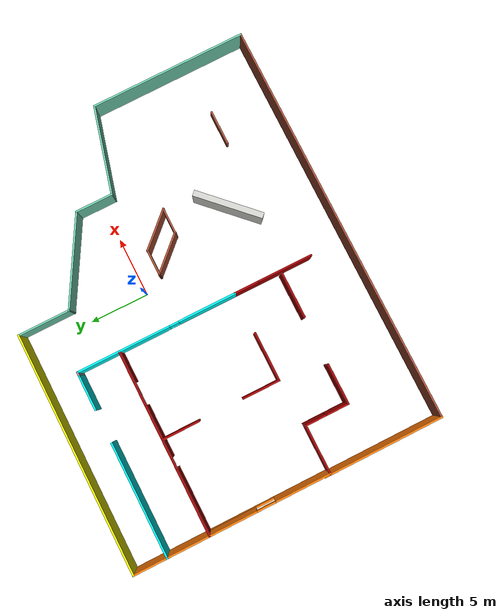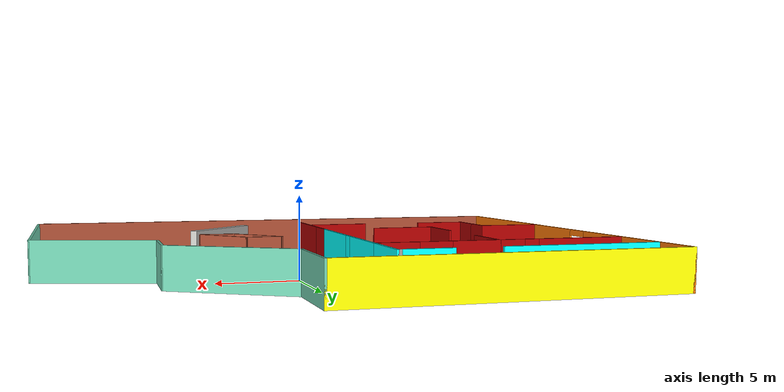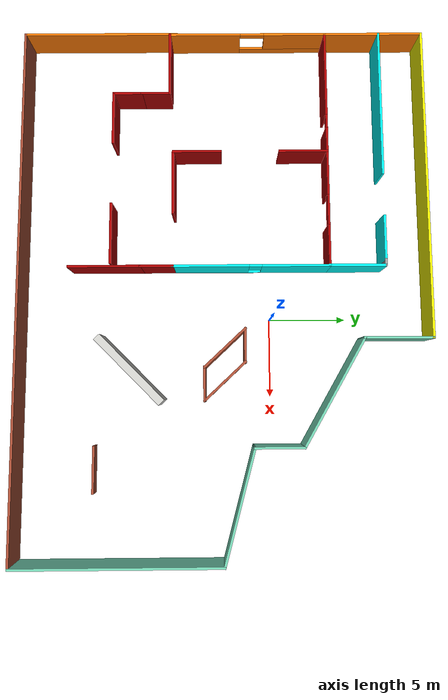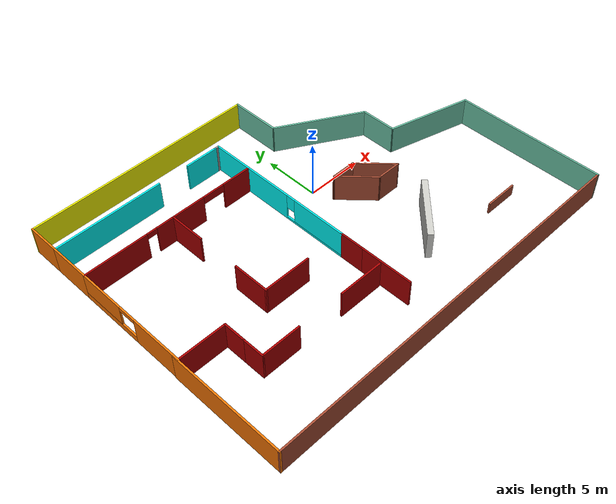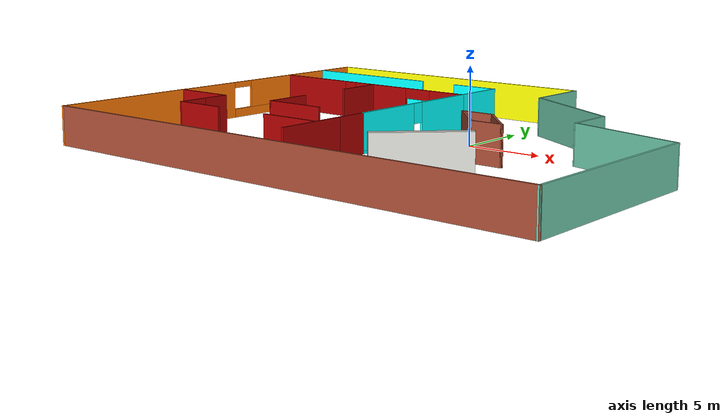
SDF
<?xml version='1.0'?>
<sdf version='1.6'>
  <model name='Building'>
    <pose frame=''>-1.90986 -2.97017 0 0 -0 0</pose>
    <link name='Wall_11'>
      <pose frame=''>-17.1231 1.60417 0 0 -0 1.5708</pose>
      <visual name='Wall_11_Visual_0'>
        <pose frame=''>-2.8644 0 1.25 0 -0 0</pose>
        <geometry>
          <box>
            <size>4.7712 0.15 2.5</size>
          </box>
        </geometry>
        <material>
          <script>
            <uri>file://media/materials/scripts/gazebo.material</uri>
            <name>Gazebo/Grey</name>
          </script>
          <ambient>0.996078 0.47451 0.0196078 1</ambient>
        </material>
        <meta>
          <layer>0</layer>
        </meta>
      </visual>
      <collision name='Wall_11_Collision_0'>
        <geometry>
          <box>
            <size>4.7712 0.15 2.5</size>
          </box>
        </geometry>
        <pose frame=''>-2.8644 0 1.25 0 -0 0</pose>
      </collision>
      <visual name='Wall_11_Visual_1'>
        <pose frame=''>2.3856 0 0.3 0 -0 0</pose>
        <geometry>
          <box>
            <size>5.7288 0.15 0.6</size>
          </box>
        </geometry>
        <material>
          <script>
            <uri>file://media/materials/scripts/gazebo.material</uri>
            <name>Gazebo/Grey</name>
          </script>
          <ambient>0.996078 0.47451 0.0196078 1</ambient>
        </material>
        <meta>
          <layer>0</layer>
        </meta>
      </visual>
      <collision name='Wall_11_Collision_1'>
        <geometry>
          <box>
            <size>5.7288 0.15 0.6</size>
          </box>
        </geometry>
        <pose frame=''>2.3856 0 0.3 0 -0 0</pose>
      </collision>
      <visual name='Wall_11_Visual_2'>
        <pose frame=''>3.1856 0 1.55 0 -0 0</pose>
        <geometry>
          <box>
            <size>4.1288 0.15 1.9</size>
          </box>
        </geometry>
        <material>
          <script>
            <uri>file://media/materials/scripts/gazebo.material</uri>
            <name>Gazebo/Grey</name>
          </script>
          <ambient>0.996078 0.47451 0.0196078 1</ambient>
        </material>
        <meta>
          <layer>0</layer>
        </meta>
      </visual>
      <collision name='Wall_11_Collision_2'>
        <geometry>
          <box>
            <size>4.1288 0.15 1.9</size>
          </box>
        </geometry>
        <pose frame=''>3.1856 0 1.55 0 -0 0</pose>
      </collision>
      <visual name='Wall_11_Visual_3'>
        <pose frame=''>0.321197 0 2.3 0 -0 0</pose>
        <geometry>
          <box>
            <size>1.6 0.15 0.4</size>
          </box>
        </geometry>
        <material>
          <script>
            <uri>file://media/materials/scripts/gazebo.material</uri>
            <name>Gazebo/Grey</name>
          </script>
          <ambient>0.996078 0.47451 0.0196078 1</ambient>
        </material>
        <meta>
          <layer>0</layer>
        </meta>
      </visual>
      <collision name='Wall_11_Collision_3'>
        <geometry>
          <box>
            <size>1.6 0.15 0.4</size>
          </box>
        </geometry>
        <pose frame=''>0.321197 0 2.3 0 -0 0</pose>
      </collision>
    </link>
    <link name='Wall_12'>
      <pose frame=''>-13.073 6.77928 0 0 -0 2.8e-05</pose>
      <visual name='Wall_12_Visual_0'>
        <pose frame=''>-1.29124 0 1.25 0 -0 0</pose>
        <geometry>
          <box>
            <size>5.66751 0.15 2.5</size>
          </box>
        </geometry>
        <material>
          <script>
            <uri>file://media/materials/scripts/gazebo.material</uri>
            <name>Gazebo/Grey</name>
          </script>
          <ambient>0.666667 0 0 1</ambient>
        </material>
        <meta>
          <layer>0</layer>
        </meta>
      </visual>
      <collision name='Wall_12_Collision_0'>
        <geometry>
          <box>
            <size>5.66751 0.15 2.5</size>
          </box>
        </geometry>
        <pose frame=''>-1.29124 0 1.25 0 -0 0</pose>
      </collision>
      <visual name='Wall_12_Visual_1'>
        <pose frame=''>3.28376 0 1.25 0 -0 0</pose>
        <geometry>
          <box>
            <size>1.68249 0.15 2.5</size>
          </box>
        </geometry>
        <material>
          <script>
            <uri>file://media/materials/scripts/gazebo.material</uri>
            <name>Gazebo/Grey</name>
          </script>
          <ambient>0.666667 0 0 1</ambient>
        </material>
        <meta>
          <layer>0</layer>
        </meta>
      </visual>
      <collision name='Wall_12_Collision_1'>
        <geometry>
          <box>
            <size>1.68249 0.15 2.5</size>
          </box>
        </geometry>
        <pose frame=''>3.28376 0 1.25 0 -0 0</pose>
      </collision>
      <visual name='Wall_12_Visual_2'>
        <pose frame=''>1.99251 0 2.25 0 -0 0</pose>
        <geometry>
          <box>
            <size>0.9 0.15 0.5</size>
          </box>
        </geometry>
        <material>
          <script>
            <uri>file://media/materials/scripts/gazebo.material</uri>
            <name>Gazebo/Grey</name>
          </script>
          <ambient>0.666667 0 0 1</ambient>
        </material>
        <meta>
          <layer>0</layer>
        </meta>
      </visual>
      <collision name='Wall_12_Collision_2'>
        <geometry>
          <box>
            <size>0.9 0.15 0.5</size>
          </box>
        </geometry>
        <pose frame=''>1.99251 0 2.25 0 -0 0</pose>
      </collision>
    </link>
    <link name='Wall_13'>
      <collision name='Wall_13_Collision'>
        <geometry>
          <box>
            <size>3.25 0.15 2.5</size>
          </box>
        </geometry>
        <pose frame=''>0 0 1.25 0 -0 0</pose>
      </collision>
      <visual name='Wall_13_Visual'>
        <pose frame=''>0 0 1.25 0 -0 0</pose>
        <geometry>
          <box>
            <size>3.25 0.15 2.5</size>
          </box>
        </geometry>
        <material>
          <script>
            <uri>file://media/materials/scripts/gazebo.material</uri>
            <name>Gazebo/Grey</name>
          </script>
          <ambient>0.666667 0 0 1</ambient>
        </material>
        <meta>
          <layer>0</layer>
        </meta>
      </visual>
      <pose frame=''>-9.02283 5.2294 0 0 0 -1.5708</pose>
    </link>
    <link name='Wall_145'>
      <collision name='Wall_145_Collision'>
        <geometry>
          <box>
            <size>3.25 0.15 2.5</size>
          </box>
        </geometry>
        <pose frame=''>0 0 1.25 0 -0 0</pose>
      </collision>
      <visual name='Wall_145_Visual'>
        <pose frame=''>0 0 1.25 0 -0 0</pose>
        <geometry>
          <box>
            <size>3.25 0.15 2.5</size>
          </box>
        </geometry>
        <material>
          <script>
            <uri>file://media/materials/scripts/gazebo.material</uri>
            <name>Gazebo/Grey</name>
          </script>
          <ambient>0.666667 0 0 1</ambient>
        </material>
        <meta>
          <layer>0</layer>
        </meta>
      </visual>
      <pose frame=''>-9.02283 -1.7706 0 0 -0 1.5708</pose>
    </link>
    <link name='Wall_15'>
      <pose frame=''>-5.22283 6.7794 0 0 -0 0</pose>
      <visual name='Wall_15_Visual_0'>
        <pose frame=''>-2.37184 0 1.25 0 -0 0</pose>
        <geometry>
          <box>
            <size>3.00631 0.15 2.5</size>
          </box>
        </geometry>
        <material>
          <script>
            <uri>file://media/materials/scripts/gazebo.material</uri>
            <name>Gazebo/Grey</name>
          </script>
          <ambient>0.666667 0 0 1</ambient>
        </material>
        <meta>
          <layer>0</layer>
        </meta>
      </visual>
      <collision name='Wall_15_Collision_0'>
        <geometry>
          <box>
            <size>3.00631 0.15 2.5</size>
          </box>
        </geometry>
        <pose frame=''>-2.37184 0 1.25 0 -0 0</pose>
      </collision>
      <visual name='Wall_15_Visual_1'>
        <pose frame=''>2.50316 0 1.25 0 -0 0</pose>
        <geometry>
          <box>
            <size>2.74369 0.15 2.5</size>
          </box>
        </geometry>
        <material>
          <script>
            <uri>file://media/materials/scripts/gazebo.material</uri>
            <name>Gazebo/Grey</name>
          </script>
          <ambient>0.666667 0 0 1</ambient>
        </material>
        <meta>
          <layer>0</layer>
        </meta>
      </visual>
      <collision name='Wall_15_Collision_1'>
        <geometry>
          <box>
            <size>2.74369 0.15 2.5</size>
          </box>
        </geometry>
        <pose frame=''>2.50316 0 1.25 0 -0 0</pose>
      </collision>
      <visual name='Wall_15_Visual_2'>
        <pose frame=''>0.131312 0 2.15 0 -0 0</pose>
        <geometry>
          <box>
            <size>2 0.15 0.7</size>
          </box>
        </geometry>
        <material>
          <script>
            <uri>file://media/materials/scripts/gazebo.material</uri>
            <name>Gazebo/Grey</name>
          </script>
          <ambient>0.666667 0 0 1</ambient>
        </material>
        <meta>
          <layer>0</layer>
        </meta>
      </visual>
      <collision name='Wall_15_Collision_2'>
        <geometry>
          <box>
            <size>2 0.15 0.7</size>
          </box>
        </geometry>
        <pose frame=''>0.131312 0 2.15 0 -0 0</pose>
      </collision>
    </link>
    <link name='Wall_16'>
      <pose frame=''>-1.42283 1.7294 0 0 0 -1.5708</pose>
      <visual name='Wall_16_Visual_0'>
        <pose frame=''>-2.89998 0 1.25 0 -0 0</pose>
        <geometry>
          <box>
            <size>4.45005 0.15 2.5</size>
          </box>
        </geometry>
        <material>
          <script>
            <uri>file://media/materials/scripts/gazebo.material</uri>
            <name>Gazebo/Grey</name>
          </script>
          <ambient>0 1 1 1</ambient>
        </material>
        <meta>
          <layer>0</layer>
        </meta>
      </visual>
      <collision name='Wall_16_Collision_0'>
        <geometry>
          <box>
            <size>4.45005 0.15 2.5</size>
          </box>
        </geometry>
        <pose frame=''>-2.89998 0 1.25 0 -0 0</pose>
      </collision>
      <visual name='Wall_16_Visual_1'>
        <pose frame=''>2.22502 0 0.1 0 -0 0</pose>
        <geometry>
          <box>
            <size>5.79995 0.15 0.2</size>
          </box>
        </geometry>
        <material>
          <script>
            <uri>file://media/materials/scripts/gazebo.material</uri>
            <name>Gazebo/Grey</name>
          </script>
          <ambient>0 1 1 1</ambient>
        </material>
        <meta>
          <layer>0</layer>
        </meta>
      </visual>
      <collision name='Wall_16_Collision_1'>
        <geometry>
          <box>
            <size>5.79995 0.15 0.2</size>
          </box>
        </geometry>
        <pose frame=''>2.22502 0 0.1 0 -0 0</pose>
      </collision>
      <visual name='Wall_16_Visual_2'>
        <pose frame=''>2.62502 0 1.35 0 -0 0</pose>
        <geometry>
          <box>
            <size>4.99995 0.15 2.3</size>
          </box>
        </geometry>
        <material>
          <script>
            <uri>file://media/materials/scripts/gazebo.material</uri>
            <name>Gazebo/Grey</name>
          </script>
          <ambient>0 1 1 1</ambient>
        </material>
        <meta>
          <layer>0</layer>
        </meta>
      </visual>
      <collision name='Wall_16_Collision_2'>
        <geometry>
          <box>
            <size>4.99995 0.15 2.3</size>
          </box>
        </geometry>
        <pose frame=''>2.62502 0 1.35 0 -0 0</pose>
      </collision>
      <visual name='Wall_16_Visual_3'>
        <pose frame=''>-0.274954 0 1.85 0 -0 0</pose>
        <geometry>
          <box>
            <size>0.8 0.15 1.3</size>
          </box>
        </geometry>
        <material>
          <script>
            <uri>file://media/materials/scripts/gazebo.material</uri>
            <name>Gazebo/Grey</name>
          </script>
          <ambient>0 1 1 1</ambient>
        </material>
        <meta>
          <layer>0</layer>
        </meta>
      </visual>
      <collision name='Wall_16_Collision_3'>
        <geometry>
          <box>
            <size>0.8 0.15 1.3</size>
          </box>
        </geometry>
        <pose frame=''>-0.274954 0 1.85 0 -0 0</pose>
      </collision>
    </link>
    <link name='Wall_21'>
      <collision name='Wall_21_Collision'>
        <geometry>
          <box>
            <size>4.25 0.15 2.5</size>
          </box>
        </geometry>
        <pose frame=''>0 0 1.25 0 -0 0</pose>
      </collision>
      <visual name='Wall_21_Visual'>
        <pose frame=''>0 0 1.25 0 -0 0</pose>
        <geometry>
          <box>
            <size>4.25 0.15 2.5</size>
          </box>
        </geometry>
        <material>
          <script>
            <uri>file://media/materials/scripts/gazebo.material</uri>
            <name>Gazebo/Grey</name>
          </script>
          <ambient>0.666667 0 0 1</ambient>
        </material>
        <meta>
          <layer>0</layer>
        </meta>
      </visual>
      <pose frame=''>-15.073 -3.57071 0 0 -0 5.5e-05</pose>
    </link>
    <link name='Wall_22'>
      <collision name='Wall_22_Collision'>
        <geometry>
          <box>
            <size>2 0.15 2.5</size>
          </box>
        </geometry>
        <pose frame=''>0 0 1.25 0 -0 0</pose>
      </collision>
      <visual name='Wall_22_Visual'>
        <pose frame=''>0 0 1.25 0 -0 0</pose>
        <geometry>
          <box>
            <size>2 0.15 2.5</size>
          </box>
        </geometry>
        <material>
          <script>
            <uri>file://media/materials/scripts/gazebo.material</uri>
            <name>Gazebo/Grey</name>
          </script>
          <ambient>0.666667 0 0 1</ambient>
        </material>
        <meta>
          <layer>0</layer>
        </meta>
      </visual>
      <pose frame=''>-13.0228 -4.4956 0 0 0 -1.5708</pose>
    </link>
    <link name='Wall_24'>
      <collision name='Wall_24_Collision'>
        <geometry>
          <box>
            <size>2.25 0.15 2.5</size>
          </box>
        </geometry>
        <pose frame=''>0 0 1.25 0 -0 0</pose>
      </collision>
      <visual name='Wall_24_Visual'>
        <pose frame=''>0 0 1.25 0 -0 0</pose>
        <geometry>
          <box>
            <size>2.25 0.15 2.5</size>
          </box>
        </geometry>
        <material>
          <script>
            <uri>file://media/materials/scripts/gazebo.material</uri>
            <name>Gazebo/Grey</name>
          </script>
          <ambient>0.666667 0 0 1</ambient>
        </material>
        <meta>
          <layer>0</layer>
        </meta>
      </visual>
      <pose frame=''>-1.42283 -4.3706 0 0 -0 1.5708</pose>
    </link>
    <link name='Wall_26'>
      <collision name='Wall_26_Collision'>
        <geometry>
          <box>
            <size>3.75 0.15 2.5</size>
          </box>
        </geometry>
        <pose frame=''>0 0 1.25 0 -0 0</pose>
      </collision>
      <visual name='Wall_26_Visual'>
        <pose frame=''>0 0 1.25 0 -0 0</pose>
        <geometry>
          <box>
            <size>3.75 0.15 2.5</size>
          </box>
        </geometry>
        <material>
          <script>
            <uri>file://media/materials/scripts/gazebo.material</uri>
            <name>Gazebo/Grey</name>
          </script>
          <ambient>0.996078 0.47451 0.0196078 1</ambient>
        </material>
        <meta>
          <layer>0</layer>
        </meta>
      </visual>
      <pose frame=''>-17.1231 8.57917 0 0 -0 1.5708</pose>
    </link>
    <link name='Wall_28'>
      <collision name='Wall_28_Collision'>
        <geometry>
          <box>
            <size>0.5 0.15 2.5</size>
          </box>
        </geometry>
        <pose frame=''>0 0 1.25 0 -0 0</pose>
      </collision>
      <visual name='Wall_28_Visual'>
        <pose frame=''>0 0 1.25 0 -0 0</pose>
        <geometry>
          <box>
            <size>0.5 0.15 2.5</size>
          </box>
        </geometry>
        <material>
          <script>
            <uri>file://media/materials/scripts/gazebo.material</uri>
            <name>Gazebo/Grey</name>
          </script>
          <ambient>1 1 1 1</ambient>
        </material>
        <meta>
          <layer>0</layer>
        </meta>
      </visual>
      <pose frame=''>-1.59783 10.3794 0 0 -0 0</pose>
    </link>
    <link name='Wall_29'>
      <collision name='Wall_29_Collision'>
        <geometry>
          <box>
            <size>3.75 0.15 2.5</size>
          </box>
        </geometry>
        <pose frame=''>0 0 1.25 0 -0 0</pose>
      </collision>
      <visual name='Wall_29_Visual'>
        <pose frame=''>0 0 1.25 0 -0 0</pose>
        <geometry>
          <box>
            <size>3.75 0.15 2.5</size>
          </box>
        </geometry>
        <material>
          <script>
            <uri>file://media/materials/scripts/gazebo.material</uri>
            <name>Gazebo/Grey</name>
          </script>
          <ambient>0 1 1 1</ambient>
        </material>
        <meta>
          <layer>0</layer>
        </meta>
      </visual>
      <pose frame=''>-1.42283 8.5794 0 0 0 -1.5708</pose>
    </link>
    <link name='Wall_34'>
      <collision name='Wall_34_Collision'>
        <geometry>
          <box>
            <size>4.25 0.15 2.5</size>
          </box>
        </geometry>
        <pose frame=''>0 0 1.25 0 -0 0</pose>
      </collision>
      <visual name='Wall_34_Visual'>
        <pose frame=''>0 0 1.25 0 -0 0</pose>
        <geometry>
          <box>
            <size>4.25 0.15 2.5</size>
          </box>
        </geometry>
        <material>
          <script>
            <uri>file://media/materials/scripts/gazebo.material</uri>
            <name>Gazebo/Grey</name>
          </script>
          <ambient>0.666667 0 0 1</ambient>
        </material>
        <meta>
          <layer>0</layer>
        </meta>
      </visual>
      <pose frame=''>-6.97283 -3.3206 0 0 -0 0</pose>
    </link>
    <link name='Wall_37'>
      <collision name='Wall_37_Collision'>
        <geometry>
          <box>
            <size>2 0.15 2.5</size>
          </box>
        </geometry>
        <pose frame=''>0 0 1.25 0 -0 0</pose>
      </collision>
      <visual name='Wall_37_Visual'>
        <pose frame=''>0 0 1.25 0 -0 0</pose>
        <geometry>
          <box>
            <size>2 0.15 2.5</size>
          </box>
        </geometry>
        <material>
          <script>
            <uri>file://media/materials/scripts/gazebo.material</uri>
            <name>Gazebo/Grey</name>
          </script>
          <ambient>0.666667 0 0 1</ambient>
        </material>
        <meta>
          <layer>0</layer>
        </meta>
      </visual>
      <pose frame=''>-13.0228 -6.3456 0 0 0 -1.5708</pose>
    </link>
    <link name='Wall_38'>
      <collision name='Wall_38_Collision'>
        <geometry>
          <box>
            <size>3.5 0.15 2.5</size>
          </box>
        </geometry>
        <pose frame=''>0 0 1.25 0 -0 0</pose>
      </collision>
      <visual name='Wall_38_Visual'>
        <pose frame=''>0 0 1.25 0 -0 0</pose>
        <geometry>
          <box>
            <size>3.5 0.15 2.5</size>
          </box>
        </geometry>
        <material>
          <script>
            <uri>file://media/materials/scripts/gazebo.material</uri>
            <name>Gazebo/Grey</name>
          </script>
          <ambient>0.666667 0 0 1</ambient>
        </material>
        <meta>
          <layer>0</layer>
        </meta>
      </visual>
      <pose frame=''>-11.3478 -7.2706 0 0 -0 0</pose>
    </link>
    <link name='Wall_40'>
      <collision name='Wall_40_Collision'>
        <geometry>
          <box>
            <size>4.75 0.15 2.5</size>
          </box>
        </geometry>
        <pose frame=''>0 0 1.25 0 -0 0</pose>
      </collision>
      <visual name='Wall_40_Visual'>
        <pose frame=''>0 0 1.25 0 -0 0</pose>
        <geometry>
          <box>
            <size>4.75 0.15 2.5</size>
          </box>
        </geometry>
        <material>
          <script>
            <uri>file://media/materials/scripts/gazebo.material</uri>
            <name>Gazebo/Grey</name>
          </script>
          <ambient>0.666667 0 0 1</ambient>
        </material>
        <meta>
          <layer>0</layer>
        </meta>
      </visual>
      <pose frame=''>-1.42283 -7.7206 0 0 0 -1.5708</pose>
    </link>
    <link name='Wall_42'>
      <collision name='Wall_42_Collision'>
        <geometry>
          <box>
            <size>4 0.15 2.5</size>
          </box>
        </geometry>
        <pose frame=''>0 0 1.25 0 -0 0</pose>
      </collision>
      <visual name='Wall_42_Visual'>
        <pose frame=''>0 0 1.25 0 -0 0</pose>
        <geometry>
          <box>
            <size>4 0.15 2.5</size>
          </box>
        </geometry>
        <material>
          <script>
            <uri>file://media/materials/scripts/gazebo.material</uri>
            <name>Gazebo/Grey</name>
          </script>
          <ambient>0.666667 0 0 1</ambient>
        </material>
        <meta>
          <layer>0</layer>
        </meta>
      </visual>
      <pose frame=''>-3.59193 -7.33035 0 0 -0 0</pose>
    </link>
    <link name='Wall_44'>
      <collision name='Wall_44_Collision'>
        <geometry>
          <box>
            <size>10.25 0.15 2.5</size>
          </box>
        </geometry>
        <pose frame=''>0 0 1.25 0 -0 0</pose>
      </collision>
      <visual name='Wall_44_Visual'>
        <pose frame=''>0 0 1.25 0 -0 0</pose>
        <geometry>
          <box>
            <size>10.25 0.15 2.5</size>
          </box>
        </geometry>
        <material>
          <script>
            <uri>file://media/materials/scripts/gazebo.material</uri>
            <name>Gazebo/Grey</name>
          </script>
          <ambient>0.996078 0.47451 0.0196078 1</ambient>
        </material>
        <meta>
          <layer>0</layer>
        </meta>
      </visual>
      <pose frame=''>-17.1751 -8.17883 0 0 0 -1.5708</pose>
    </link>
    <link name='Wall_45'>
      <collision name='Wall_45_Collision'>
        <geometry>
          <box>
            <size>34.5 0.15 2.5</size>
          </box>
        </geometry>
        <pose frame=''>0 0 1.25 0 -0 0</pose>
      </collision>
      <visual name='Wall_45_Visual'>
        <pose frame=''>0 0 1.25 0 -0 0</pose>
        <geometry>
          <box>
            <size>34.5 0.15 2.5</size>
          </box>
        </geometry>
        <material>
          <script>
            <uri>file://media/materials/scripts/gazebo.material</uri>
            <name>Gazebo/Bricks</name>
          </script>
          <ambient>1 0.764706 0.305882 1</ambient>
        </material>
        <meta>
          <layer>0</layer>
        </meta>
      </visual>
      <pose frame=''>-0.000142 -13.2288 0 0 -0 0</pose>
    </link>
    <link name='Wall_51'>
      <collision name='Wall_51_Collision'>
        <geometry>
          <box>
            <size>9.75 0.15 2.5</size>
          </box>
        </geometry>
        <pose frame=''>0 0 1.25 0 -0 0</pose>
      </collision>
      <visual name='Wall_51_Visual'>
        <pose frame=''>0 0 1.25 0 -0 0</pose>
        <geometry>
          <box>
            <size>9.75 0.15 2.5</size>
          </box>
        </geometry>
        <material>
          <script>
            <uri>file://media/materials/scripts/gazebo.material</uri>
            <name>Gazebo/Grey</name>
          </script>
          <ambient>0 1 1 1</ambient>
        </material>
        <meta>
          <layer>0</layer>
        </meta>
      </visual>
      <pose frame=''>-12.323 10.3793 0 0 -0 2.3e-05</pose>
    </link>
    <link name='Wall_53'>
      <collision name='Wall_53_Collision'>
        <geometry>
          <box>
            <size>3 0.15 2.5</size>
          </box>
        </geometry>
        <pose frame=''>0 0 1.25 0 -0 0</pose>
      </collision>
      <visual name='Wall_53_Visual'>
        <pose frame=''>0 0 1.25 0 -0 0</pose>
        <geometry>
          <box>
            <size>3 0.15 2.5</size>
          </box>
        </geometry>
        <material>
          <script>
            <uri>file://media/materials/scripts/gazebo.material</uri>
            <name>Gazebo/Grey</name>
          </script>
          <ambient>0 1 1 1</ambient>
        </material>
        <meta>
          <layer>0</layer>
        </meta>
      </visual>
      <pose frame=''>-3.19783 10.3794 0 0 -0 3.14159</pose>
    </link>
    <link name='Wall_56'>
      <collision name='Wall_56_Collision'>
        <geometry>
          <box>
            <size>3 0.15 2.5</size>
          </box>
        </geometry>
        <pose frame=''>0 0 1.25 0 -0 0</pose>
      </collision>
      <visual name='Wall_56_Visual'>
        <pose frame=''>0 0 1.25 0 -0 0</pose>
        <geometry>
          <box>
            <size>3 0.15 2.5</size>
          </box>
        </geometry>
        <material>
          <script>
            <uri>file://media/materials/scripts/gazebo.material</uri>
            <name>Gazebo/Grey</name>
          </script>
          <ambient>0.996078 0.47451 0.0196078 1</ambient>
        </material>
        <meta>
          <layer>0</layer>
        </meta>
      </visual>
      <pose frame=''>-17.1231 11.8042 0 0 -0 1.5708</pose>
    </link>
    <link name='Wall_57'>
      <collision name='Wall_57_Collision'>
        <geometry>
          <box>
            <size>20.5 0.15 2.5</size>
          </box>
        </geometry>
        <pose frame=''>0 0 1.25 0 -0 0</pose>
      </collision>
      <visual name='Wall_57_Visual'>
        <pose frame=''>0 0 1.25 0 -0 0</pose>
        <geometry>
          <box>
            <size>20.5 0.15 2.5</size>
          </box>
        </geometry>
        <material>
          <script>
            <uri>file://media/materials/scripts/gazebo.material</uri>
            <name>Gazebo/Grey</name>
          </script>
          <ambient>1 1 0 1</ambient>
        </material>
        <meta>
          <layer>0</layer>
        </meta>
      </visual>
      <pose frame=''>-6.94814 13.2292 0 0 -0 0</pose>
    </link>
    <link name='Wall_58'>
      <collision name='Wall_58_Collision'>
        <geometry>
          <box>
            <size>4.5 0.15 2.5</size>
          </box>
        </geometry>
        <pose frame=''>0 0 1.25 0 -0 0</pose>
      </collision>
      <visual name='Wall_58_Visual'>
        <pose frame=''>0 0 1.25 0 -0 0</pose>
        <geometry>
          <box>
            <size>4.5 0.15 2.5</size>
          </box>
        </geometry>
        <material>
          <script>
            <uri>file://media/materials/scripts/gazebo.material</uri>
            <name>Gazebo/Grey</name>
          </script>
          <ambient>0.435294 0.796078 0.67451 1</ambient>
        </material>
        <meta>
          <layer>0</layer>
        </meta>
      </visual>
      <pose frame=''>3.22686 11.0542 0 0 0 -1.5708</pose>
    </link>
    <link name='Wall_59'>
      <collision name='Wall_59_Collision'>
        <geometry>
          <box>
            <size>8 0.15 2.5</size>
          </box>
        </geometry>
        <pose frame=''>0 0 1.25 0 -0 0</pose>
      </collision>
      <visual name='Wall_59_Visual'>
        <pose frame=''>0 0 1.25 0 -0 0</pose>
        <geometry>
          <box>
            <size>8 0.15 2.5</size>
          </box>
        </geometry>
        <material>
          <script>
            <uri>file://media/materials/scripts/gazebo.material</uri>
            <name>Gazebo/Grey</name>
          </script>
          <ambient>0.435294 0.796078 0.67451 1</ambient>
        </material>
        <meta>
          <layer>0</layer>
        </meta>
      </visual>
      <pose frame=''>6.62636 6.91667 0 0 0 -0.523554</pose>
    </link>
    <link name='Wall_60'>
      <collision name='Wall_60_Collision'>
        <geometry>
          <box>
            <size>3.25 0.15 2.5</size>
          </box>
        </geometry>
        <pose frame=''>0 0 1.25 0 -0 0</pose>
      </collision>
      <visual name='Wall_60_Visual'>
        <pose frame=''>0 0 1.25 0 -0 0</pose>
        <geometry>
          <box>
            <size>3.25 0.15 2.5</size>
          </box>
        </geometry>
        <material>
          <script>
            <uri>file://media/materials/scripts/gazebo.material</uri>
            <name>Gazebo/Grey</name>
          </script>
          <ambient>0.435294 0.796078 0.67451 1</ambient>
        </material>
        <meta>
          <layer>0</layer>
        </meta>
      </visual>
      <pose frame=''>10.0259 3.40417 0 0 0 -1.5708</pose>
    </link>
    <link name='Wall_61'>
      <collision name='Wall_61_Collision'>
        <geometry>
          <box>
            <size>7.5 0.15 2.5</size>
          </box>
        </geometry>
        <pose frame=''>0 0 1.25 0 -0 0</pose>
      </collision>
      <visual name='Wall_61_Visual'>
        <pose frame=''>0 0 1.25 0 -0 0</pose>
        <geometry>
          <box>
            <size>7.5 0.15 2.5</size>
          </box>
        </geometry>
        <material>
          <script>
            <uri>file://media/materials/scripts/gazebo.material</uri>
            <name>Gazebo/Grey</name>
          </script>
          <ambient>0.435294 0.796078 0.67451 1</ambient>
        </material>
        <meta>
          <layer>0</layer>
        </meta>
      </visual>
      <pose frame=''>13.5754 0.903172 0 0 0 -0.261777</pose>
    </link>
    <link name='Wall_63'>
      <collision name='Wall_63_Collision'>
        <geometry>
          <box>
            <size>5.84982 0.5 2.5</size>
          </box>
        </geometry>
        <pose frame=''>0 0 1.25 0 -0 0</pose>
      </collision>
      <visual name='Wall_63_Visual'>
        <pose frame=''>0 0 1.25 0 -0 0</pose>
        <geometry>
          <box>
            <size>5.84982 0.5 2.5</size>
          </box>
        </geometry>
        <material>
          <script>
            <uri>file://media/materials/scripts/gazebo.material</uri>
            <name>Gazebo/CeilingTiled</name>
          </script>
          <ambient>0.921569 0.807843 0.615686 1</ambient>
        </material>
        <meta>
          <layer>0</layer>
        </meta>
      </visual>
      <pose frame=''>5.15136 -6.04333 0 0 -0 0.785398</pose>
    </link>
    <link name='Wall_65'>
      <collision name='Wall_65_Collision'>
        <geometry>
          <box>
            <size>13.3312 0.15 2.5</size>
          </box>
        </geometry>
        <pose frame=''>0 0 1.25 0 -0 0</pose>
      </collision>
      <visual name='Wall_65_Visual'>
        <pose frame=''>0 0 1.25 0 -0 0</pose>
        <geometry>
          <box>
            <size>13.3312 0.15 2.5</size>
          </box>
        </geometry>
        <material>
          <script>
            <uri>file://media/materials/scripts/gazebo.material</uri>
            <name>Gazebo/Grey</name>
          </script>
          <ambient>0.435294 0.796078 0.67451 1</ambient>
        </material>
        <meta>
          <layer>0</layer>
        </meta>
      </visual>
      <pose frame=''>17.1499 -6.63833 0 0 0 -1.567</pose>
    </link>
    <link name='Wall_67'>
      <collision name='Wall_67_Collision'>
        <geometry>
          <box>
            <size>3 0.15 1</size>
          </box>
        </geometry>
        <pose frame=''>0 0 0.5 0 -0 0</pose>
      </collision>
      <visual name='Wall_67_Visual'>
        <pose frame=''>0 0 0.5 0 -0 0</pose>
        <geometry>
          <box>
            <size>3 0.15 1</size>
          </box>
        </geometry>
        <material>
          <script>
            <uri>file://media/materials/scripts/gazebo.material</uri>
            <name>Gazebo/Bricks</name>
          </script>
          <ambient>0.333333 1 0 1</ambient>
        </material>
        <meta>
          <layer>0</layer>
        </meta>
      </visual>
      <pose frame=''>11.4669 -8.41783 0 0 -0 0</pose>
    </link>
    <link name='Wall_71'>
      <collision name='Wall_71_Collision'>
        <geometry>
          <box>
            <size>2.25 0.15 2.5</size>
          </box>
        </geometry>
        <pose frame=''>0 0 1.25 0 -0 0</pose>
      </collision>
      <visual name='Wall_71_Visual'>
        <pose frame=''>0 0 1.25 0 -0 0</pose>
        <geometry>
          <box>
            <size>2.25 0.15 2.5</size>
          </box>
        </geometry>
        <material>
          <script>
            <uri>file://media/materials/scripts/gazebo.material</uri>
            <name>Gazebo/Bricks</name>
          </script>
          <ambient>1 1 1 1</ambient>
        </material>
        <meta>
          <layer>0</layer>
        </meta>
      </visual>
      <pose frame=''>6.07586 -1.27483 0 0 -0 0</pose>
    </link>
    <link name='Wall_72'>
      <collision name='Wall_72_Collision'>
        <geometry>
          <box>
            <size>3.68812 0.15 2.5</size>
          </box>
        </geometry>
        <pose frame=''>0 0 1.25 0 -0 0</pose>
      </collision>
      <visual name='Wall_72_Visual'>
        <pose frame=''>0 0 1.25 0 -0 0</pose>
        <geometry>
          <box>
            <size>3.68812 0.15 2.5</size>
          </box>
        </geometry>
        <material>
          <script>
            <uri>file://media/materials/scripts/gazebo.material</uri>
            <name>Gazebo/Bricks</name>
          </script>
          <ambient>1 1 1 1</ambient>
        </material>
        <meta>
          <layer>0</layer>
        </meta>
      </visual>
      <pose frame=''>5.91636 0.016172 0 0 -0 2.32361</pose>
    </link>
    <link name='Wall_73'>
      <collision name='Wall_73_Collision'>
        <geometry>
          <box>
            <size>2.25 0.15 2.5</size>
          </box>
        </geometry>
        <pose frame=''>0 0 1.25 0 -0 0</pose>
      </collision>
      <visual name='Wall_73_Visual'>
        <pose frame=''>0 0 1.25 0 -0 0</pose>
        <geometry>
          <box>
            <size>2.25 0.15 2.5</size>
          </box>
        </geometry>
        <material>
          <script>
            <uri>file://media/materials/scripts/gazebo.material</uri>
            <name>Gazebo/Bricks</name>
          </script>
          <ambient>1 1 1 1</ambient>
        </material>
        <meta>
          <layer>0</layer>
        </meta>
      </visual>
      <pose frame=''>3.65686 1.30717 0 0 -0 3.14159</pose>
    </link>
    <link name='Wall_75'>
      <collision name='Wall_75_Collision'>
        <geometry>
          <box>
            <size>3.68812 0.15 2.5</size>
          </box>
        </geometry>
        <pose frame=''>0 0 1.25 0 -0 0</pose>
      </collision>
      <visual name='Wall_75_Visual'>
        <pose frame=''>0 0 1.25 0 -0 0</pose>
        <geometry>
          <box>
            <size>3.68812 0.15 2.5</size>
          </box>
        </geometry>
        <material>
          <script>
            <uri>file://media/materials/scripts/gazebo.material</uri>
            <name>Gazebo/Bricks</name>
          </script>
          <ambient>1 1 1 1</ambient>
        </material>
        <meta>
          <layer>0</layer>
        </meta>
      </visual>
      <pose frame=''>3.81636 0.016172 0 0 0 -0.81798</pose>
    </link>
    <static>1</static>
  </model>
</sdf>
